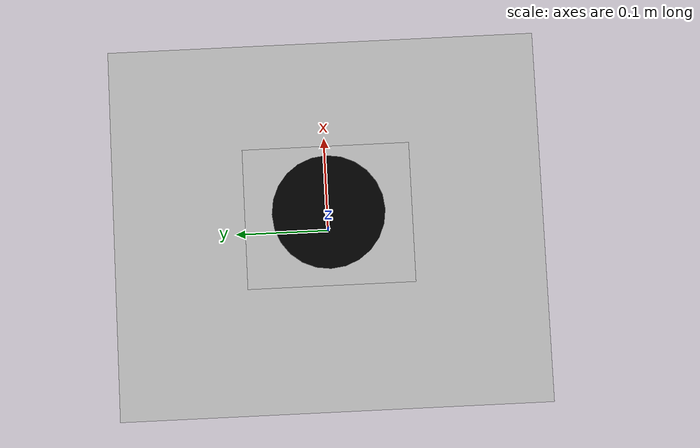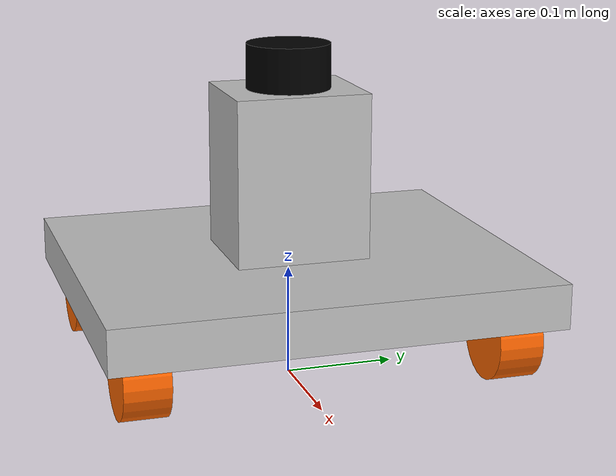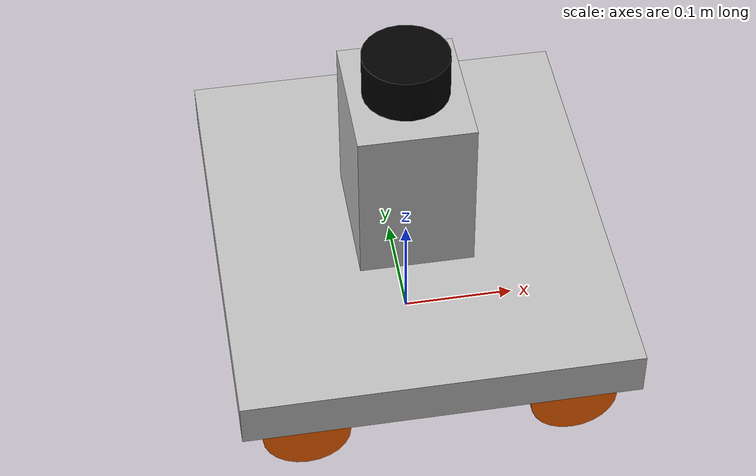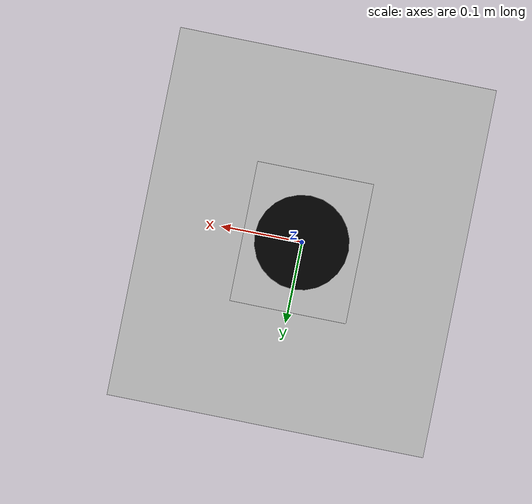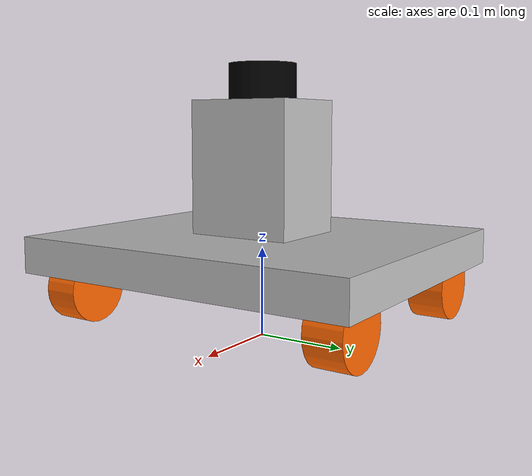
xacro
<?xml version="1.0"?>
<robot name="xbot" xmlns:xacro="http://www.ros.org/wiki/xacro">

    <!-- PROPERTY LIST -->
    <xacro:property name="M_PI" value="3.1415926"/>
    <xacro:property name="wheel_mass"   value="0.5" />
    <xacro:property name="wheel_radius" value="0.0375"/>
    <xacro:property name="wheel_length" value="0.04"/>
    <xacro:property name="wheel_joint_x" value="0.115"/>
    <xacro:property name="wheel_joint_y" value="0.1625"/>
    <xacro:property name="wheel_joint_z" value="0.04"/>

    <!-- Defining the colors used in this robot -->
    <material name="yellow">
        <color rgba="1 0.4 0 1"/>
    </material>
    <material name="black">
        <color rgba="0 0 0 0.95"/>
    </material>
    <material name="gray">
        <color rgba="0.75 0.75 0.75 1"/>
    </material>

    <!-- Macro for inertia matrix -->

    <xacro:macro name="cylinder_inertial_matrix" params="m r h">
        <inertial>
            <mass value="${m}" />
            <inertia ixx="${m*(3*r*r+h*h)/12}" ixy = "0" ixz = "0"
                iyy="${m*(3*r*r+h*h)/12}" iyz = "0"
                izz="${m*r*r/2}" />
        </inertial>
    </xacro:macro>

    <!-- Macro for robot wheel -->
    <xacro:macro name="wheel" params="prefix prefix1 reflect reflect1">
        <joint name="${prefix}_${prefix1}_wheel_joint" type="continuous">
            <origin xyz="${reflect*wheel_joint_x} ${reflect1*wheel_joint_y} ${-wheel_joint_z}" rpy="0 0 0"/>
            <parent link="base_link"/>
            <child link="${prefix}_${prefix1}_wheel_link"/>
            <axis xyz="0 1 0"/>
        </joint>

        <link name="${prefix}_${prefix1}_wheel_link">
            <visual>
                <origin xyz="0 0 0" rpy="${M_PI/2} 0 0" />
                <geometry>
                    <cylinder radius="${wheel_radius}" length = "${wheel_length}"/>
                </geometry>
                <material name="yellow" />
            </visual>
       <collision>
                <origin xyz="0 0 0" rpy="${M_PI/2} 0 0" />
                <geometry>
                    <cylinder radius="${wheel_radius}" length = "${wheel_length}"/>
                </geometry>
       </collision>
            <cylinder_inertial_matrix  m="${wheel_mass}" r="${wheel_radius}" h="${wheel_length}" />
        </link>

        <gazebo reference="${prefix}_${prefix1}_wheel_link">
            <material>Gazebo/Gray</material>
        </gazebo>

        <!-- Transmission is important to link the joints and the controller -->
        <transmission name="${prefix}_${prefix1}_wheel_joint_trans">
            <type>transmission_interface/SimpleTransmission</type>
            <joint name="${prefix}_${prefix1}_wheel_joint" >
                <hardwareInterface>hardware_interface/VelocityJointInterface</hardwareInterface>
            </joint>
            <actuator name="${prefix}_${prefix1}_wheel_joint_motor">
                <hardwareInterface>hardware_interface/VelocityJointInterface</hardwareInterface>
                <mechanicalReduction>1</mechanicalReduction>
            </actuator>
        </transmission>

    </xacro:macro>

        <xacro:wheel prefix="left" prefix1="front" reflect="1" reflect1="1"/>
        <xacro:wheel prefix="right" prefix1="back" reflect="-1" reflect1="-1"/>
        <xacro:wheel prefix="left" prefix1="back" reflect="-1" reflect1="1"/>
        <xacro:wheel prefix="right" prefix1="front" reflect="1" reflect1="-1"/>

<!-- Macro for robot xbot_base -->
    <xacro:macro name="xbot_support">

 <link name="support_link">
            <visual>
                <origin xyz="0 0 0" rpy="0 0 0" />
                <geometry>
                     <box size="0.1 0.12 0.148" />
                </geometry>
                <material name="gray" />
            </visual>

            <collision>
                <origin xyz=" 0 0 0" rpy="0 0 0" />
                <geometry>
                    <box size="0.1 0.12 0.148" />
                </geometry>
            </collision>

        <inertial>
            <mass value="0.2" />
            <inertia ixx="0.005372992" ixy = "-3.51393682670083E-19" ixz = "3.72260093121449E-20"
                iyy="0.0036112" iyz = "6.57163669546638E-20"
                izz="0.004721792" />
        </inertial>

        </link>

        <gazebo reference="support_link">
            <material>Gazebo/gray</material>
        </gazebo>

        <joint name="base_joint" type="fixed">
            <origin xyz="0 0 0.094" rpy="0 0 0"/>
            <parent link="base_link"/>
            <child link="support_link" />
        </joint>

        <link name="laser">
            <visual>
                <origin xyz="0 0 0" rpy="0 0 0" />
                <geometry>
                    <cylinder radius="0.0375" length = "0.04"/>
                </geometry>
                <material name="black" />
            </visual>
       <collision>
                <origin xyz="0 0 0" rpy="0 0 0" />
                <geometry>
                    <cylinder radius="0.0375" length = "0.04"/>
                </geometry>
       </collision>
            <cylinder_inertial_matrix  m="0.2" r="0.0375" h="0.04" />
        </link>

        <gazebo reference="laser">
            <material>Gazebo/Black</material>
        </gazebo>

<gazebo reference="laser">
           <sensor type="camera" name="camera_node">
                <update_rate>30.0</update_rate>
                <camera name="head">
                    <horizontal_fov>1.3962634</horizontal_fov>
                    <image>
                        <width>1280</width>
                        <height>720</height>
                        <format>R8G8B8</format>
                    </image>
                    <clip>
                        <near>0.02</near>
                        <far>300</far>
                    </clip>
                    <noise>
                        <type>gaussian</type>
                        <mean>0.0</mean>
                        <stddev>0.007</stddev>
                    </noise>
                </camera>
                <plugin name="gazebo_camera" filename="libgazebo_ros_camera.so">
                    <alwaysOn>true</alwaysOn>
                    <updateRate>0.0</updateRate>
                    <cameraName>/camera</cameraName>
                    <imageTopicName>image_raw</imageTopicName>
                    <cameraInfoTopicName>camera_info</cameraInfoTopicName>
                    <frameName>camera_link</frameName>
                    <hackBaseline>0.07</hackBaseline>
                    <distortionK1>0.0</distortionK1>
                    <distortionK2>0.0</distortionK2>
                    <distortionK3>0.0</distortionK3>
                    <distortionT1>0.0</distortionT1>
                    <distortionT2>0.0</distortionT2>
                </plugin>
            </sensor>
        </gazebo>

        <joint name="laser_joint" type="fixed">
            <origin xyz="0 0 0.188" rpy="0 0 0"/>
            <parent link="base_link"/>
            <child link="laser" />
        </joint>

    </xacro:macro>

<xacro:xbot_support />

  <!-- Macro for robot xbot_base -->
    <xacro:macro name="xbot_base">

    <link name="base_footprint">
            <visual>
                <origin xyz="0 0 0" rpy="0 0 0" />
                <geometry>
                    <box size="0.001 0.001 0.001" />
                </geometry>
            </visual>

        </link>

        <gazebo reference="base_footprint">
            <turnGravityOff>false</turnGravityOff>
        </gazebo>

        <joint name="base_footprint_joint" type="fixed">
            <origin xyz="0 0 0.0975" rpy="0 0 0" />
            <parent link="base_footprint"/>
            <child link="base_link" />
        </joint>

      <link name="base_link">
            <visual>
                <origin xyz=" 0 0 0" rpy="0 0 0" />
                <geometry>
                    <box size="0.34 0.395 0.04" />
                </geometry>
                <material name="gray" />
            </visual>

            <collision>
                <origin xyz=" 0 0 0" rpy="0 0 0" />
                <geometry>
                   <box size="0.34 0.395 0.04" />
                </geometry>
            </collision>

        <inertial>
            <mass value="2" />
            <inertia ixx="0.07160115625" ixy = "-6.6980230317588E-19" ixz = "-2.21472363018394E-19"
                iyy="0.1249414625" iyz = "-4.29515715444313E-18"
                izz="0.05479390625" />
        </inertial>

        </link>
         <gazebo reference="base_link">
            <material>Gazebo/Blue</material>
        </gazebo>

        <!-- controller -->
        <gazebo>
            <plugin name="differential_drive_controller"
                    filename="libgazebo_ros_diff_drive.so">
                <rosDebugLevel>Debug</rosDebugLevel>
                <publishWheelTF>true</publishWheelTF>
                <robotNamespace>/</robotNamespace>
                <publishTf>1</publishTf>
                <publishWheelJointState>true</publishWheelJointState>
                <alwaysOn>true</alwaysOn>
                <updateRate>100.0</updateRate>
                <legacyMode>true</legacyMode>
                <leftJoint>left_front_wheel_joint</leftJoint>
                <rightJoint>right_front_wheel_joint</rightJoint>
                <leftJoint>left_back_wheel_joint</leftJoint>
                <rightJoint>right_back_wheel_joint</rightJoint>
                <wheelSeparation>${wheel_joint_y*2}</wheelSeparation>
                <wheelDiameter>${2*wheel_radius}</wheelDiameter>
                <broadcastTF>1</broadcastTF>
                <wheelTorque>30</wheelTorque>
                <wheelAcceleration>1.8</wheelAcceleration>
                <commandTopic>cmd_vel</commandTopic>
                <odometryFrame>odom</odometryFrame>
                <odometryTopic>odom</odometryTopic>
                <robotBaseFrame>base_footprint</robotBaseFrame>
            </plugin>
        </gazebo>

    </xacro:macro>
<xacro:xbot_base />
</robot>
